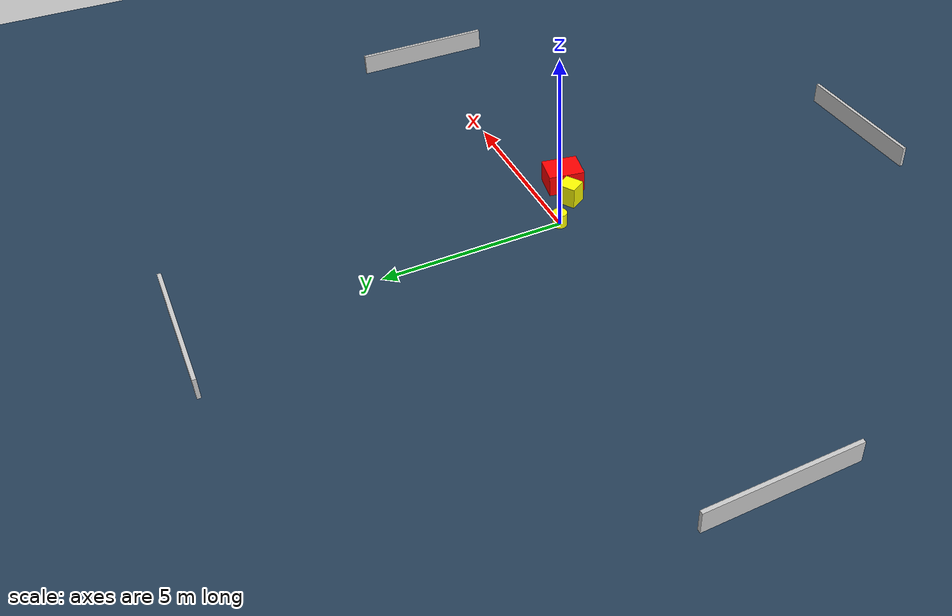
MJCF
<?xml version="1.0" ?>
<mujoco model="generated_environment">
  <option timestep="0.01" integrator="RK4" cone="elliptic"/>
  <default>
    <geom density="1"/>
  </default>
  <asset>
    <texture builtin="gradient" height="3072" name="skybox" rgb1="0.3 0.5 0.7" rgb2="0 0 0" type="skybox" width="512"/>
    <texture builtin="checker" height="300" name="groundplane" rgb1="0.2 0.3 0.4" rgb2="0.1 0.2 0.3" type="2d" width="300"/>
    <material name="groundplane" reflectance="0.2" texrepeat="5 5" texture="groundplane"/>
  </asset>
  <worldbody>
    <light dir="0 0 -1" directional="true" pos="0 0 1.5"/>
    <geom condim="3" friction="0.5 0.005 0.001" material="groundplane" name="floor" pos="0 0 0" size="0 0 0.05" type="plane"/>
    <body name="walls">
      <geom name="wall_1" condim="4" pos="-10.0 0.0 0.3" rgba="0.800000011920929 0.800000011920929 0.800000011920929 1.0" size="0.05 2.0 0.3" type="box"/>
      <geom name="wall_2" condim="4" pos="10.0 0.0 0.3" rgba="0.800000011920929 0.800000011920929 0.800000011920929 1.0" size="0.05 2.0 0.3" type="box"/>
      <geom name="wall_3" condim="4" pos="0.0 -10.0 0.3" rgba="0.800000011920929 0.800000011920929 0.800000011920929 1.0" size="2.0 0.05 0.3" type="box"/>
      <geom name="wall_4" condim="4" pos="0.0 10.0 0.3" rgba="0.800000011920929 0.800000011920929 0.800000011920929 1.0" size="2.0 0.05 0.3" type="box"/>
    </body>
    <body name="robot">
      <joint name="joint_x" type="slide" pos="0 0 0" axis="1 0 0"/>
      <joint name="joint_y" type="slide" pos="0 0 0" axis="0 1 0"/>
      <geom name="robot" type="cylinder" pos="0.0 0.0 0.2" size="0.2 0.2 0.0" mass="5.0" friction="1.0 0.005 0.0001" condim="4" rgba="1.0 1.0 0.0 1.0"/>
    </body>
    <body name="obstacle_1_movable">
      <geom name="obstacle_1_movable" condim="4" pos="0.8051629190937546 -0.7293419729004103 0.3" euler="0 0 211.95523419428656" friction="0.0 0.005 0.001" rgba="1.0 1.0 0.0 1.0" size="0.26246379839243916 0.24670767657877693 0.3" type="box" mass="0.1"/>
      <joint type="free"/>
    </body>
    <body name="obstacle_2_static">
      <geom name="obstacle_2_static" condim="4" pos="1.5801939318292433 -0.8968092333412067 0.3" euler="0 0 349.51597748413076" friction="0.0 0.005 0.001" rgba="1.0 0.0 0.0 1.0" size="0.41917815658415025 0.5034946726287368 0.3" type="box"/>
    </body>
  </worldbody>
  <actuator>
    <motor name="actuator_x" joint="joint_x" gear="1" ctrlrange="-1 1"/>
    <motor name="actuator_y" joint="joint_y" gear="1" ctrlrange="-1 1"/>
  </actuator>
</mujoco>
